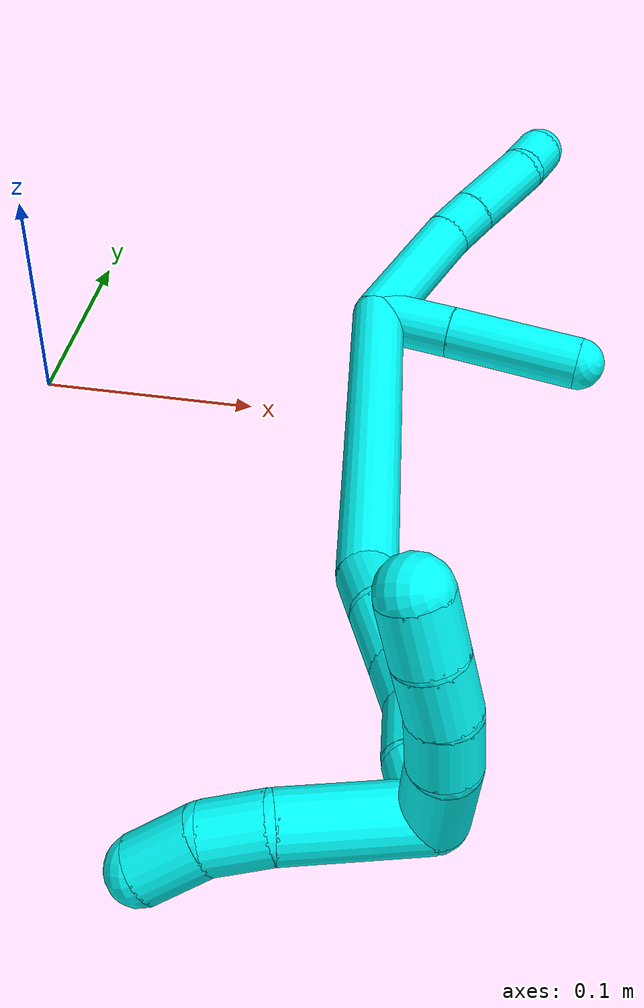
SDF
<sdf version="1.7">
 <world name="default">
  <model name="photoneo_s_sensor">
   <static>1</static>
   <pose>0 0 2 1.57079 1.57079 3.14159</pose>
   <link name="link">
    <inertial><mass>0.1</mass></inertial>
    <sensor name="sensor" type="depth">
     <update_rate>30</update_rate>
     <camera>
      <horizontal_fov>1.22</horizontal_fov>
      <image><width>1920</width><height>1200</height><format>B8G8R8</format></image>
      <clip><near>0.1</near><far>4</far></clip>
      <depth_camera><output>points</output></depth_camera>
     </camera>
     <plugin name="camera_plugin" filename="libgazebo_ros_depth_camera.so">
      <baseline>0.2</baseline>
      <alwaysOn>1</alwaysOn>
      <updateRate>0.0</updateRate>
      <cameraName>camera_ir</cameraName>
      <imageTopicName>/camera/color/image_raw</imageTopicName>
      <cameraInfoTopicName>/camera/color/camera_info</cameraInfoTopicName>
      <depthImageTopicName>/camera/depth/image_raw</depthImageTopicName>
      <depthImageCameraInfoTopicName>/camera/depth/camera_info</depthImageCameraInfoTopicName>
      <pointCloudTopicName>/camera/depth/points</pointCloudTopicName>
      <frameName>fr_optical</frameName>
      <pointCloudCutoff>0.1</pointCloudCutoff>
      <pointCloudCutoffMax>2.0</pointCloudCutoffMax>
      <distortionK1>0</distortionK1>
      <distortionK2>0</distortionK2>
      <distortionK3>0</distortionK3>
      <distortionT1>0</distortionT1>
      <distortionT2>0</distortionT2>
      <CxPrime>0</CxPrime>
      <Cx>0</Cx>
      <Cy>0</Cy>
      <focalLength>0</focalLength>
      <hackBaseline>0</hackBaseline>
     </plugin>
    </sensor>
   </link>
  </model>
  <model name="bin">
   <static>1</static>
   <link name="bottom">
    <collision name="collision-bottom">
     <pose>0 0 -0.01 0 -0 0</pose>
     <geometry><box><size>0.8 0.6 0.02</size></box></geometry>
     <surface>
      <friction><ode><mu>100</mu><mu2>100</mu2></ode></friction>
      <contact><collide_bitmask>65535</collide_bitmask></contact>
     </surface>
    </collision>
   </link>
   <link name="west_wall">
    <collision name="collision-west_wall">
     <pose>-0.41 0 0.1 0 -0 0</pose>
     <geometry><box><size>0.02 0.6 0.2</size></box></geometry>
     <surface>
      <friction><ode><mu>100</mu><mu2>100</mu2></ode></friction>
      <contact><collide_bitmask>65535</collide_bitmask></contact>
     </surface>
    </collision>
   </link>
   <link name="east_wall">
    <collision name="collision-east_wall">
     <pose>0.41 0 0.1 0 -0 0</pose>
     <geometry><box><size>0.02 0.6 0.2</size></box></geometry>
     <surface>
      <friction><ode><mu>100</mu><mu2>100</mu2></ode></friction>
      <contact><collide_bitmask>65535</collide_bitmask></contact>
     </surface>
    </collision>
   </link>
   <link name="south_wall">
    <collision name="collision-south_wall">
     <pose>0 -0.31 0.1 0 -0 0</pose>
     <geometry><box><size>0.8 0.02 0.2</size></box></geometry>
     <surface>
      <friction><ode><mu>100</mu><mu2>100</mu2></ode></friction>
      <contact><collide_bitmask>65535</collide_bitmask></contact>
     </surface>
    </collision>
   </link>
   <link name="north_wall">
    <collision name="collision-north_wall">
     <pose>0 0.31 0.1 0 -0 0</pose>
     <geometry><box><size>0.8 0.02 0.2</size></box></geometry>
     <surface>
      <friction><ode><mu>100</mu><mu2>100</mu2></ode></friction>
      <contact><collide_bitmask>65535</collide_bitmask></contact>
     </surface>
    </collision>
   </link>
  </model>
  <model name="3">
   <static>0</static>
   <link name="3">
    <collision name="collision-cylinder-e_1_2_8">
     <pose>0.006427 0.031063 0.004859 -1.41562 0.201626 -0.172693</pose>
     <geometry><cylinder><radius>0.0125</radius><length>0.064181</length></cylinder></geometry>
     <surface>
      <friction><ode><mu>1.16</mu><mu2>1.16</mu2><slip1>0</slip1><slip2>0</slip2></ode></friction>
      <contact><ode><kp>1e+06</kp><kd>1</kd><max_vel>0</max_vel><min_depth>0.001</min_depth></ode></contact>
     </surface>
    </collision>
    <visual name="visual-cylinder-e_1_2_8">
     <pose>0.006427 0.031063 0.004859 -1.41562 0.201626 -0.172693</pose>
     <geometry><cylinder><radius>0.0125</radius><length>0.064181</length></cylinder></geometry>
     <material><ambient>0.003922 1 0.996078 1</ambient></material>
    </visual>
    <collision name="collision-cylinder-e_2_8_9">
     <pose>0.015446 0.071787 0.012469 -1.29346 0.252633 -0.19119</pose>
     <geometry><cylinder><radius>0.0125</radius><length>0.020751</length></cylinder></geometry>
     <surface>
      <friction><ode><mu>1.16</mu><mu2>1.16</mu2><slip1>0</slip1><slip2>0</slip2></ode></friction>
      <contact><ode><kp>1e+06</kp><kd>1</kd><max_vel>0</max_vel><min_depth>0.001</min_depth></ode></contact>
     </surface>
    </collision>
    <visual name="visual-cylinder-e_2_8_9">
     <pose>0.015446 0.071787 0.012469 -1.29346 0.252633 -0.19119</pose>
     <geometry><cylinder><radius>0.0125</radius><length>0.020751</length></cylinder></geometry>
     <material><ambient>0.003922 1 0.996078 1</ambient></material>
    </visual>
    <collision name="collision-cylinder-e_3_9_10">
     <pose>0.023672 0.10066 0.020408 -1.30703 0.275824 -0.21177</pose>
     <geometry><cylinder><radius>0.0125</radius><length>0.04136</length></cylinder></geometry>
     <surface>
      <friction><ode><mu>1.16</mu><mu2>1.16</mu2><slip1>0</slip1><slip2>0</slip2></ode></friction>
      <contact><ode><kp>1e+06</kp><kd>1</kd><max_vel>0</max_vel><min_depth>0.001</min_depth></ode></contact>
     </surface>
    </collision>
    <visual name="visual-cylinder-e_3_9_10">
     <pose>0.023672 0.10066 0.020408 -1.30703 0.275824 -0.21177</pose>
     <geometry><cylinder><radius>0.0125</radius><length>0.04136</length></cylinder></geometry>
     <material><ambient>0.003922 1 0.996078 1</ambient></material>
    </visual>
    <collision name="collision-cylinder-e_4_10_6">
     <pose>0.033207 0.13102 0.024619 -1.65816 0.335573 -0.365597</pose>
     <geometry><cylinder><radius>0.0125</radius><length>0.023708</length></cylinder></geometry>
     <surface>
      <friction><ode><mu>1.16</mu><mu2>1.16</mu2><slip1>0</slip1><slip2>0</slip2></ode></friction>
      <contact><ode><kp>1e+06</kp><kd>1</kd><max_vel>0</max_vel><min_depth>0.001</min_depth></ode></contact>
     </surface>
    </collision>
    <visual name="visual-cylinder-e_4_10_6">
     <pose>0.033207 0.13102 0.024619 -1.65816 0.335573 -0.365597</pose>
     <geometry><cylinder><radius>0.0125</radius><length>0.023708</length></cylinder></geometry>
     <material><ambient>0.003922 1 0.996078 1</ambient></material>
    </visual>
    <collision name="collision-cylinder-e_1_2_11">
     <pose>0.011479 0.00053 0.014563 -0.036402 0.667204 -0.012617</pose>
     <geometry><cylinder><radius>0.0125</radius><length>0.037102</length></cylinder></geometry>
     <surface>
      <friction><ode><mu>1.16</mu><mu2>1.16</mu2><slip1>0</slip1><slip2>0</slip2></ode></friction>
      <contact><ode><kp>1e+06</kp><kd>1</kd><max_vel>0</max_vel><min_depth>0.001</min_depth></ode></contact>
     </surface>
    </collision>
    <visual name="visual-cylinder-e_1_2_11">
     <pose>0.011479 0.00053 0.014563 -0.036402 0.667204 -0.012617</pose>
     <geometry><cylinder><radius>0.0125</radius><length>0.037102</length></cylinder></geometry>
     <material><ambient>0.003922 1 0.996078 1</ambient></material>
    </visual>
    <collision name="collision-cylinder-e_2_11_5">
     <pose>0.042978 0.001946 0.053364 -0.036512 0.69005 -0.013124</pose>
     <geometry><cylinder><radius>0.0125</radius><length>0.062898</length></cylinder></geometry>
     <surface>
      <friction><ode><mu>1.16</mu><mu2>1.16</mu2><slip1>0</slip1><slip2>0</slip2></ode></friction>
      <contact><ode><kp>1e+06</kp><kd>1</kd><max_vel>0</max_vel><min_depth>0.001</min_depth></ode></contact>
     </surface>
    </collision>
    <visual name="visual-cylinder-e_2_11_5">
     <pose>0.042978 0.001946 0.053364 -0.036512 0.69005 -0.013124</pose>
     <geometry><cylinder><radius>0.0125</radius><length>0.062898</length></cylinder></geometry>
     <material><ambient>0.003922 1 0.996078 1</ambient></material>
    </visual>
    <collision name="collision-cylinder-e_1_2_12">
     <pose>-0.004333 -0.080698 0.037976 1.13095 -0.048548 -0.030812</pose>
     <geometry><cylinder><radius>0.0125</radius><length>0.178584</length></cylinder></geometry>
     <surface>
      <friction><ode><mu>1.16</mu><mu2>1.16</mu2><slip1>0</slip1><slip2>0</slip2></ode></friction>
      <contact><ode><kp>1e+06</kp><kd>1</kd><max_vel>0</max_vel><min_depth>0.001</min_depth></ode></contact>
     </surface>
    </collision>
    <visual name="visual-cylinder-e_1_2_12">
     <pose>-0.004333 -0.080698 0.037976 1.13095 -0.048548 -0.030812</pose>
     <geometry><cylinder><radius>0.0125</radius><length>0.178584</length></cylinder></geometry>
     <material><ambient>0.003922 1 0.996078 1</ambient></material>
    </visual>
    <collision name="collision-cylinder-e_2_12_13">
     <pose>-0.009915 -0.1707 0.085191 0.788888 -0.094885 -0.039521</pose>
     <geometry><cylinder><radius>0.0125</radius><length>0.026345</length></cylinder></geometry>
     <surface>
      <friction><ode><mu>1.16</mu><mu2>1.16</mu2><slip1>0</slip1><slip2>0</slip2></ode></friction>
      <contact><ode><kp>1e+06</kp><kd>1</kd><max_vel>0</max_vel><min_depth>0.001</min_depth></ode></contact>
     </surface>
    </collision>
    <visual name="visual-cylinder-e_2_12_13">
     <pose>-0.009915 -0.1707 0.085191 0.788888 -0.094885 -0.039521</pose>
     <geometry><cylinder><radius>0.0125</radius><length>0.026345</length></cylinder></geometry>
     <material><ambient>0.003922 1 0.996078 1</ambient></material>
    </visual>
    <collision name="collision-cylinder-e_3_13_14">
     <pose>-0.009412 -0.190821 0.103306 0.883677 0.124479 0.058941</pose>
     <geometry><cylinder><radius>0.0125</radius><length>0.028199</length></cylinder></geometry>
     <surface>
      <friction><ode><mu>1.16</mu><mu2>1.16</mu2><slip1>0</slip1><slip2>0</slip2></ode></friction>
      <contact><ode><kp>1e+06</kp><kd>1</kd><max_vel>0</max_vel><min_depth>0.001</min_depth></ode></contact>
     </surface>
    </collision>
    <visual name="visual-cylinder-e_3_13_14">
     <pose>-0.009412 -0.190821 0.103306 0.883677 0.124479 0.058941</pose>
     <geometry><cylinder><radius>0.0125</radius><length>0.028199</length></cylinder></geometry>
     <material><ambient>0.003922 1 0.996078 1</ambient></material>
    </visual>
    <collision name="collision-cylinder-e_4_14_15">
     <pose>-0.007572 -0.209869 0.119547 0.840835 0.008087 0.003615</pose>
     <geometry><cylinder><radius>0.0125</radius><length>0.022097</length></cylinder></geometry>
     <surface>
      <friction><ode><mu>1.16</mu><mu2>1.16</mu2><slip1>0</slip1><slip2>0</slip2></ode></friction>
      <contact><ode><kp>1e+06</kp><kd>1</kd><max_vel>0</max_vel><min_depth>0.001</min_depth></ode></contact>
     </surface>
    </collision>
    <visual name="visual-cylinder-e_4_14_15">
     <pose>-0.007572 -0.209869 0.119547 0.840835 0.008087 0.003615</pose>
     <geometry><cylinder><radius>0.0125</radius><length>0.022097</length></cylinder></geometry>
     <material><ambient>0.003922 1 0.996078 1</ambient></material>
    </visual>
    <collision name="collision-cylinder-e_5_15_16">
     <pose>-0.008204 -0.228427 0.131758 1.13216 -0.063127 -0.040122</pose>
     <geometry><cylinder><radius>0.0125</radius><length>0.022853</length></cylinder></geometry>
     <surface>
      <friction><ode><mu>1.16</mu><mu2>1.16</mu2><slip1>0</slip1><slip2>0</slip2></ode></friction>
      <contact><ode><kp>1e+06</kp><kd>1</kd><max_vel>0</max_vel><min_depth>0.001</min_depth></ode></contact>
     </surface>
    </collision>
    <visual name="visual-cylinder-e_5_15_16">
     <pose>-0.008204 -0.228427 0.131758 1.13216 -0.063127 -0.040122</pose>
     <geometry><cylinder><radius>0.0125</radius><length>0.022853</length></cylinder></geometry>
     <material><ambient>0.003922 1 0.996078 1</ambient></material>
    </visual>
    <collision name="collision-cylinder-e_6_16_1">
     <pose>-0.007646 -0.247629 0.142901 0.953686 0.116903 0.060443</pose>
     <geometry><cylinder><radius>0.0125</radius><length>0.021922</length></cylinder></geometry>
     <surface>
      <friction><ode><mu>1.16</mu><mu2>1.16</mu2><slip1>0</slip1><slip2>0</slip2></ode></friction>
      <contact><ode><kp>1e+06</kp><kd>1</kd><max_vel>0</max_vel><min_depth>0.001</min_depth></ode></contact>
     </surface>
    </collision>
    <visual name="visual-cylinder-e_6_16_1">
     <pose>-0.007646 -0.247629 0.142901 0.953686 0.116903 0.060443</pose>
     <geometry><cylinder><radius>0.0125</radius><length>0.021922</length></cylinder></geometry>
     <material><ambient>0.003922 1 0.996078 1</ambient></material>
    </visual>
    <collision name="collision-cylinder-e_1_1_17">
     <pose>-0.023539 -0.267754 0.133166 2.52991 -0.719832 -1.74537</pose>
     <geometry><cylinder><radius>0.0125</radius><length>0.052095</length></cylinder></geometry>
     <surface>
      <friction><ode><mu>1.16</mu><mu2>1.16</mu2><slip1>0</slip1><slip2>0</slip2></ode></friction>
      <contact><ode><kp>1e+06</kp><kd>1</kd><max_vel>0</max_vel><min_depth>0.001</min_depth></ode></contact>
     </surface>
    </collision>
    <visual name="visual-cylinder-e_1_1_17">
     <pose>-0.023539 -0.267754 0.133166 2.52991 -0.719832 -1.74537</pose>
     <geometry><cylinder><radius>0.0125</radius><length>0.052095</length></cylinder></geometry>
     <material><ambient>0.003922 1 0.996078 1</ambient></material>
    </visual>
    <collision name="collision-cylinder-e_2_17_18">
     <pose>-0.045721 -0.284065 0.108069 2.63206 -0.449563 -1.44103</pose>
     <geometry><cylinder><radius>0.0125</radius><length>0.023055</length></cylinder></geometry>
     <surface>
      <friction><ode><mu>1.16</mu><mu2>1.16</mu2><slip1>0</slip1><slip2>0</slip2></ode></friction>
      <contact><ode><kp>1e+06</kp><kd>1</kd><max_vel>0</max_vel><min_depth>0.001</min_depth></ode></contact>
     </surface>
    </collision>
    <visual name="visual-cylinder-e_2_17_18">
     <pose>-0.045721 -0.284065 0.108069 2.63206 -0.449563 -1.44103</pose>
     <geometry><cylinder><radius>0.0125</radius><length>0.023055</length></cylinder></geometry>
     <material><ambient>0.003922 1 0.996078 1</ambient></material>
    </visual>
    <collision name="collision-cylinder-e_3_18_4">
     <pose>-0.0524 -0.295963 0.088763 2.55322 -0.134746 -0.438263</pose>
     <geometry><cylinder><radius>0.0125</radius><length>0.02485</length></cylinder></geometry>
     <surface>
      <friction><ode><mu>1.16</mu><mu2>1.16</mu2><slip1>0</slip1><slip2>0</slip2></ode></friction>
      <contact><ode><kp>1e+06</kp><kd>1</kd><max_vel>0</max_vel><min_depth>0.001</min_depth></ode></contact>
     </surface>
    </collision>
    <visual name="visual-cylinder-e_3_18_4">
     <pose>-0.0524 -0.295963 0.088763 2.55322 -0.134746 -0.438263</pose>
     <geometry><cylinder><radius>0.0125</radius><length>0.02485</length></cylinder></geometry>
     <material><ambient>0.003922 1 0.996078 1</ambient></material>
    </visual>
    <collision name="collision-cylinder-e_1_1_19">
     <pose>-0.019232 -0.253122 0.160381 -0.294024 -0.833563 0.130928</pose>
     <geometry><cylinder><radius>0.0125</radius><length>0.034754</length></cylinder></geometry>
     <surface>
      <friction><ode><mu>1.16</mu><mu2>1.16</mu2><slip1>0</slip1><slip2>0</slip2></ode></friction>
      <contact><ode><kp>1e+06</kp><kd>1</kd><max_vel>0</max_vel><min_depth>0.001</min_depth></ode></contact>
     </surface>
    </collision>
    <visual name="visual-cylinder-e_1_1_19">
     <pose>-0.019232 -0.253122 0.160381 -0.294024 -0.833563 0.130928</pose>
     <geometry><cylinder><radius>0.0125</radius><length>0.034754</length></cylinder></geometry>
     <material><ambient>0.003922 1 0.996078 1</ambient></material>
    </visual>
    <collision name="collision-cylinder-e_2_19_20">
     <pose>-0.040785 -0.24591 0.176612 -0.648242 -0.940634 0.338325</pose>
     <geometry><cylinder><radius>0.0125</radius><length>0.021508</length></cylinder></geometry>
     <surface>
      <friction><ode><mu>1.16</mu><mu2>1.16</mu2><slip1>0</slip1><slip2>0</slip2></ode></friction>
      <contact><ode><kp>1e+06</kp><kd>1</kd><max_vel>0</max_vel><min_depth>0.001</min_depth></ode></contact>
     </surface>
    </collision>
    <visual name="visual-cylinder-e_2_19_20">
     <pose>-0.040785 -0.24591 0.176612 -0.648242 -0.940634 0.338325</pose>
     <geometry><cylinder><radius>0.0125</radius><length>0.021508</length></cylinder></geometry>
     <material><ambient>0.003922 1 0.996078 1</ambient></material>
    </visual>
    <collision name="collision-cylinder-e_3_20_21">
     <pose>-0.059262 -0.238326 0.185095 -0.830793 -1.09137 0.523332</pose>
     <geometry><cylinder><radius>0.0125</radius><length>0.022064</length></cylinder></geometry>
     <surface>
      <friction><ode><mu>1.16</mu><mu2>1.16</mu2><slip1>0</slip1><slip2>0</slip2></ode></friction>
      <contact><ode><kp>1e+06</kp><kd>1</kd><max_vel>0</max_vel><min_depth>0.001</min_depth></ode></contact>
     </surface>
    </collision>
    <visual name="visual-cylinder-e_3_20_21">
     <pose>-0.059262 -0.238326 0.185095 -0.830793 -1.09137 0.523332</pose>
     <geometry><cylinder><radius>0.0125</radius><length>0.022064</length></cylinder></geometry>
     <material><ambient>0.003922 1 0.996078 1</ambient></material>
    </visual>
    <collision name="collision-cylinder-e_4_21_3">
     <pose>-0.07842 -0.229699 0.190963 -1.1069 -1.04442 0.683272</pose>
     <geometry><cylinder><radius>0.0125</radius><length>0.021675</length></cylinder></geometry>
     <surface>
      <friction><ode><mu>1.16</mu><mu2>1.16</mu2><slip1>0</slip1><slip2>0</slip2></ode></friction>
      <contact><ode><kp>1e+06</kp><kd>1</kd><max_vel>0</max_vel><min_depth>0.001</min_depth></ode></contact>
     </surface>
    </collision>
    <visual name="visual-cylinder-e_4_21_3">
     <pose>-0.07842 -0.229699 0.190963 -1.1069 -1.04442 0.683272</pose>
     <geometry><cylinder><radius>0.0125</radius><length>0.021675</length></cylinder></geometry>
     <material><ambient>0.003922 1 0.996078 1</ambient></material>
    </visual>
    <collision name="collision-sphere-3">
     <pose>-0.087791 -0.22483 0.193399 0 -0 0</pose>
     <geometry><sphere><radius>0.0125</radius></sphere></geometry>
     <surface>
      <friction><ode><mu>1.16</mu><mu2>1.16</mu2><slip1>0</slip1><slip2>0</slip2></ode></friction>
      <contact><ode><kp>1e+06</kp><kd>1</kd><max_vel>0</max_vel><min_depth>0.001</min_depth></ode></contact>
     </surface>
    </collision>
    <visual name="visual-sphere-3">
     <pose>-0.087791 -0.22483 0.193399 0 -0 0</pose>
     <geometry><sphere><radius>0.0125</radius></sphere></geometry>
     <material><ambient>0.003922 1 0.996078 1</ambient></material>
    </visual>
    <collision name="collision-sphere-21">
     <pose>-0.06905 -0.234569 0.188526 0 -0 0</pose>
     <geometry><sphere><radius>0.0125</radius></sphere></geometry>
     <surface>
      <friction><ode><mu>1.16</mu><mu2>1.16</mu2><slip1>0</slip1><slip2>0</slip2></ode></friction>
      <contact><ode><kp>1e+06</kp><kd>1</kd><max_vel>0</max_vel><min_depth>0.001</min_depth></ode></contact>
     </surface>
    </collision>
    <visual name="visual-sphere-21">
     <pose>-0.06905 -0.234569 0.188526 0 -0 0</pose>
     <geometry><sphere><radius>0.0125</radius></sphere></geometry>
     <material><ambient>0.003922 1 0.996078 1</ambient></material>
    </visual>
    <collision name="collision-sphere-20">
     <pose>-0.049474 -0.242084 0.181664 0 -0 0</pose>
     <geometry><sphere><radius>0.0125</radius></sphere></geometry>
     <surface>
      <friction><ode><mu>1.16</mu><mu2>1.16</mu2><slip1>0</slip1><slip2>0</slip2></ode></friction>
      <contact><ode><kp>1e+06</kp><kd>1</kd><max_vel>0</max_vel><min_depth>0.001</min_depth></ode></contact>
     </surface>
    </collision>
    <visual name="visual-sphere-20">
     <pose>-0.049474 -0.242084 0.181664 0 -0 0</pose>
     <geometry><sphere><radius>0.0125</radius></sphere></geometry>
     <material><ambient>0.003922 1 0.996078 1</ambient></material>
    </visual>
    <collision name="collision-sphere-19">
     <pose>-0.032097 -0.249737 0.171561 0 -0 0</pose>
     <geometry><sphere><radius>0.0125</radius></sphere></geometry>
     <surface>
      <friction><ode><mu>1.16</mu><mu2>1.16</mu2><slip1>0</slip1><slip2>0</slip2></ode></friction>
      <contact><ode><kp>1e+06</kp><kd>1</kd><max_vel>0</max_vel><min_depth>0.001</min_depth></ode></contact>
     </surface>
    </collision>
    <visual name="visual-sphere-19">
     <pose>-0.032097 -0.249737 0.171561 0 -0 0</pose>
     <geometry><sphere><radius>0.0125</radius></sphere></geometry>
     <material><ambient>0.003922 1 0.996078 1</ambient></material>
    </visual>
    <collision name="collision-sphere-11">
     <pose>0.022958 0.001061 0.029126 0 -0 0</pose>
     <geometry><sphere><radius>0.0125</radius></sphere></geometry>
     <surface>
      <friction><ode><mu>1.16</mu><mu2>1.16</mu2><slip1>0</slip1><slip2>0</slip2></ode></friction>
      <contact><ode><kp>1e+06</kp><kd>1</kd><max_vel>0</max_vel><min_depth>0.001</min_depth></ode></contact>
     </surface>
    </collision>
    <visual name="visual-sphere-11">
     <pose>0.022958 0.001061 0.029126 0 -0 0</pose>
     <geometry><sphere><radius>0.0125</radius></sphere></geometry>
     <material><ambient>0.003922 1 0.996078 1</ambient></material>
    </visual>
    <collision name="collision-sphere-6">
     <pose>0.037111 0.14217 0.023642 0 -0 0</pose>
     <geometry><sphere><radius>0.0125</radius></sphere></geometry>
     <surface>
      <friction><ode><mu>1.16</mu><mu2>1.16</mu2><slip1>0</slip1><slip2>0</slip2></ode></friction>
      <contact><ode><kp>1e+06</kp><kd>1</kd><max_vel>0</max_vel><min_depth>0.001</min_depth></ode></contact>
     </surface>
    </collision>
    <visual name="visual-sphere-6">
     <pose>0.037111 0.14217 0.023642 0 -0 0</pose>
     <geometry><sphere><radius>0.0125</radius></sphere></geometry>
     <material><ambient>0.003922 1 0.996078 1</ambient></material>
    </visual>
    <collision name="collision-sphere-10">
     <pose>0.029304 0.11987 0.025596 0 -0 0</pose>
     <geometry><sphere><radius>0.0125</radius></sphere></geometry>
     <surface>
      <friction><ode><mu>1.16</mu><mu2>1.16</mu2><slip1>0</slip1><slip2>0</slip2></ode></friction>
      <contact><ode><kp>1e+06</kp><kd>1</kd><max_vel>0</max_vel><min_depth>0.001</min_depth></ode></contact>
     </surface>
    </collision>
    <visual name="visual-sphere-10">
     <pose>0.029304 0.11987 0.025596 0 -0 0</pose>
     <geometry><sphere><radius>0.0125</radius></sphere></geometry>
     <material><ambient>0.003922 1 0.996078 1</ambient></material>
    </visual>
    <collision name="collision-sphere-9">
     <pose>0.01804 0.08145 0.01522 0 -0 0</pose>
     <geometry><sphere><radius>0.0125</radius></sphere></geometry>
     <surface>
      <friction><ode><mu>1.16</mu><mu2>1.16</mu2><slip1>0</slip1><slip2>0</slip2></ode></friction>
      <contact><ode><kp>1e+06</kp><kd>1</kd><max_vel>0</max_vel><min_depth>0.001</min_depth></ode></contact>
     </surface>
    </collision>
    <visual name="visual-sphere-9">
     <pose>0.01804 0.08145 0.01522 0 -0 0</pose>
     <geometry><sphere><radius>0.0125</radius></sphere></geometry>
     <material><ambient>0.003922 1 0.996078 1</ambient></material>
    </visual>
    <collision name="collision-sphere-2">
     <geometry><sphere><radius>0.0125</radius></sphere></geometry>
     <surface>
      <friction><ode><mu>1.16</mu><mu2>1.16</mu2><slip1>0</slip1><slip2>0</slip2></ode></friction>
      <contact><ode><kp>1e+06</kp><kd>1</kd><max_vel>0</max_vel><min_depth>0.001</min_depth></ode></contact>
     </surface>
    </collision>
    <visual name="visual-sphere-2">
     <geometry><sphere><radius>0.0125</radius></sphere></geometry>
     <material><ambient>0.003922 1 0.996078 1</ambient></material>
    </visual>
    <collision name="collision-sphere-8">
     <pose>0.012853 0.062125 0.009719 0 -0 0</pose>
     <geometry><sphere><radius>0.0125</radius></sphere></geometry>
     <surface>
      <friction><ode><mu>1.16</mu><mu2>1.16</mu2><slip1>0</slip1><slip2>0</slip2></ode></friction>
      <contact><ode><kp>1e+06</kp><kd>1</kd><max_vel>0</max_vel><min_depth>0.001</min_depth></ode></contact>
     </surface>
    </collision>
    <visual name="visual-sphere-8">
     <pose>0.012853 0.062125 0.009719 0 -0 0</pose>
     <geometry><sphere><radius>0.0125</radius></sphere></geometry>
     <material><ambient>0.003922 1 0.996078 1</ambient></material>
    </visual>
    <collision name="collision-sphere-5">
     <pose>0.062998 0.002831 0.077602 0 -0 0</pose>
     <geometry><sphere><radius>0.0125</radius></sphere></geometry>
     <surface>
      <friction><ode><mu>1.16</mu><mu2>1.16</mu2><slip1>0</slip1><slip2>0</slip2></ode></friction>
      <contact><ode><kp>1e+06</kp><kd>1</kd><max_vel>0</max_vel><min_depth>0.001</min_depth></ode></contact>
     </surface>
    </collision>
    <visual name="visual-sphere-5">
     <pose>0.062998 0.002831 0.077602 0 -0 0</pose>
     <geometry><sphere><radius>0.0125</radius></sphere></geometry>
     <material><ambient>0.003922 1 0.996078 1</ambient></material>
    </visual>
    <collision name="collision-sphere-12">
     <pose>-0.008667 -0.161395 0.075951 0 -0 0</pose>
     <geometry><sphere><radius>0.0125</radius></sphere></geometry>
     <surface>
      <friction><ode><mu>1.16</mu><mu2>1.16</mu2><slip1>0</slip1><slip2>0</slip2></ode></friction>
      <contact><ode><kp>1e+06</kp><kd>1</kd><max_vel>0</max_vel><min_depth>0.001</min_depth></ode></contact>
     </surface>
    </collision>
    <visual name="visual-sphere-12">
     <pose>-0.008667 -0.161395 0.075951 0 -0 0</pose>
     <geometry><sphere><radius>0.0125</radius></sphere></geometry>
     <material><ambient>0.003922 1 0.996078 1</ambient></material>
    </visual>
    <collision name="collision-sphere-13">
     <pose>-0.011163 -0.180005 0.094431 0 -0 0</pose>
     <geometry><sphere><radius>0.0125</radius></sphere></geometry>
     <surface>
      <friction><ode><mu>1.16</mu><mu2>1.16</mu2><slip1>0</slip1><slip2>0</slip2></ode></friction>
      <contact><ode><kp>1e+06</kp><kd>1</kd><max_vel>0</max_vel><min_depth>0.001</min_depth></ode></contact>
     </surface>
    </collision>
    <visual name="visual-sphere-13">
     <pose>-0.011163 -0.180005 0.094431 0 -0 0</pose>
     <geometry><sphere><radius>0.0125</radius></sphere></geometry>
     <material><ambient>0.003922 1 0.996078 1</ambient></material>
    </visual>
    <collision name="collision-sphere-14">
     <pose>-0.007661 -0.201636 0.11218 0 -0 0</pose>
     <geometry><sphere><radius>0.0125</radius></sphere></geometry>
     <surface>
      <friction><ode><mu>1.16</mu><mu2>1.16</mu2><slip1>0</slip1><slip2>0</slip2></ode></friction>
      <contact><ode><kp>1e+06</kp><kd>1</kd><max_vel>0</max_vel><min_depth>0.001</min_depth></ode></contact>
     </surface>
    </collision>
    <visual name="visual-sphere-14">
     <pose>-0.007661 -0.201636 0.11218 0 -0 0</pose>
     <geometry><sphere><radius>0.0125</radius></sphere></geometry>
     <material><ambient>0.003922 1 0.996078 1</ambient></material>
    </visual>
    <collision name="collision-sphere-15">
     <pose>-0.007483 -0.218103 0.126915 0 -0 0</pose>
     <geometry><sphere><radius>0.0125</radius></sphere></geometry>
     <surface>
      <friction><ode><mu>1.16</mu><mu2>1.16</mu2><slip1>0</slip1><slip2>0</slip2></ode></friction>
      <contact><ode><kp>1e+06</kp><kd>1</kd><max_vel>0</max_vel><min_depth>0.001</min_depth></ode></contact>
     </surface>
    </collision>
    <visual name="visual-sphere-15">
     <pose>-0.007483 -0.218103 0.126915 0 -0 0</pose>
     <geometry><sphere><radius>0.0125</radius></sphere></geometry>
     <material><ambient>0.003922 1 0.996078 1</ambient></material>
    </visual>
    <collision name="collision-sphere-16">
     <pose>-0.008924 -0.238751 0.136601 0 -0 0</pose>
     <geometry><sphere><radius>0.0125</radius></sphere></geometry>
     <surface>
      <friction><ode><mu>1.16</mu><mu2>1.16</mu2><slip1>0</slip1><slip2>0</slip2></ode></friction>
      <contact><ode><kp>1e+06</kp><kd>1</kd><max_vel>0</max_vel><min_depth>0.001</min_depth></ode></contact>
     </surface>
    </collision>
    <visual name="visual-sphere-16">
     <pose>-0.008924 -0.238751 0.136601 0 -0 0</pose>
     <geometry><sphere><radius>0.0125</radius></sphere></geometry>
     <material><ambient>0.003922 1 0.996078 1</ambient></material>
    </visual>
    <collision name="collision-sphere-1">
     <pose>-0.006367 -0.256507 0.1492 0 -0 0</pose>
     <geometry><sphere><radius>0.0125</radius></sphere></geometry>
     <surface>
      <friction><ode><mu>1.16</mu><mu2>1.16</mu2><slip1>0</slip1><slip2>0</slip2></ode></friction>
      <contact><ode><kp>1e+06</kp><kd>1</kd><max_vel>0</max_vel><min_depth>0.001</min_depth></ode></contact>
     </surface>
    </collision>
    <visual name="visual-sphere-1">
     <pose>-0.006367 -0.256507 0.1492 0 -0 0</pose>
     <geometry><sphere><radius>0.0125</radius></sphere></geometry>
     <material><ambient>0.003922 1 0.996078 1</ambient></material>
    </visual>
    <collision name="collision-sphere-18">
     <pose>-0.05073 -0.289129 0.099005 0 -0 0</pose>
     <geometry><sphere><radius>0.0125</radius></sphere></geometry>
     <surface>
      <friction><ode><mu>1.16</mu><mu2>1.16</mu2><slip1>0</slip1><slip2>0</slip2></ode></friction>
      <contact><ode><kp>1e+06</kp><kd>1</kd><max_vel>0</max_vel><min_depth>0.001</min_depth></ode></contact>
     </surface>
    </collision>
    <visual name="visual-sphere-18">
     <pose>-0.05073 -0.289129 0.099005 0 -0 0</pose>
     <geometry><sphere><radius>0.0125</radius></sphere></geometry>
     <material><ambient>0.003922 1 0.996078 1</ambient></material>
    </visual>
    <collision name="collision-sphere-17">
     <pose>-0.040711 -0.279001 0.117132 0 -0 0</pose>
     <geometry><sphere><radius>0.0125</radius></sphere></geometry>
     <surface>
      <friction><ode><mu>1.16</mu><mu2>1.16</mu2><slip1>0</slip1><slip2>0</slip2></ode></friction>
      <contact><ode><kp>1e+06</kp><kd>1</kd><max_vel>0</max_vel><min_depth>0.001</min_depth></ode></contact>
     </surface>
    </collision>
    <visual name="visual-sphere-17">
     <pose>-0.040711 -0.279001 0.117132 0 -0 0</pose>
     <geometry><sphere><radius>0.0125</radius></sphere></geometry>
     <material><ambient>0.003922 1 0.996078 1</ambient></material>
    </visual>
    <collision name="collision-sphere-4">
     <pose>-0.054069 -0.302796 0.078521 0 -0 0</pose>
     <geometry><sphere><radius>0.0125</radius></sphere></geometry>
     <surface>
      <friction><ode><mu>1.16</mu><mu2>1.16</mu2><slip1>0</slip1><slip2>0</slip2></ode></friction>
      <contact><ode><kp>1e+06</kp><kd>1</kd><max_vel>0</max_vel><min_depth>0.001</min_depth></ode></contact>
     </surface>
    </collision>
    <visual name="visual-sphere-4">
     <pose>-0.054069 -0.302796 0.078521 0 -0 0</pose>
     <geometry><sphere><radius>0.0125</radius></sphere></geometry>
     <material><ambient>0.003922 1 0.996078 1</ambient></material>
    </visual>
    <inertial>
     <pose>-0.005773 -0.107808 0.074466 0 -0 0</pose>
     <mass>0.75</mass>
     <inertia>
      <ixx>0.000518</ixx>
      <ixy>0</ixy>
      <ixz>0</ixz>
      <iyy>0.000221</iyy>
      <iyz>0</iyz>
      <izz>0.000447</izz>
     </inertia>
    </inertial>
   </link>
   <pose>0.151069 0.061158 0.016387 0.489318 0.888906 0.190166</pose>
  </model>
 </world>
</sdf>
